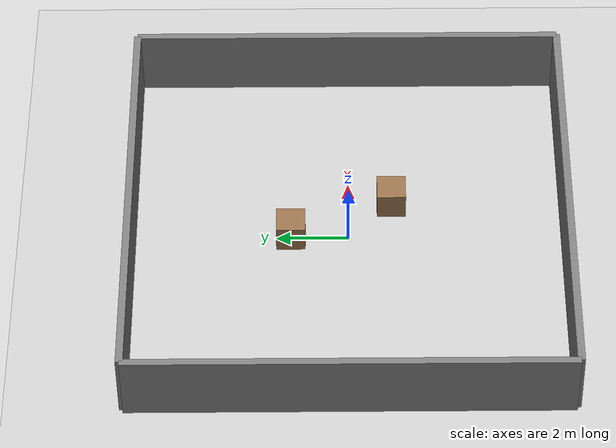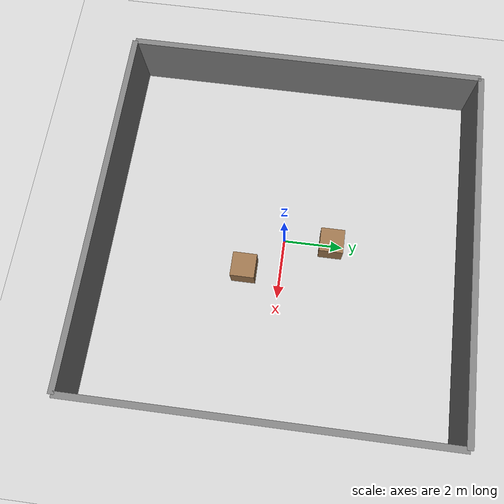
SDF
<sdf version="1.7">
 <world name="follow_test">
  <plugin filename="ignition-gazebo-physics-system" name="ignition::gazebo::systems::Physics"/>
  <plugin filename="ignition-gazebo-user-commands-system" name="ignition::gazebo::systems::UserCommands"/>
  <plugin filename="ignition-gazebo-scene-broadcaster-system" name="ignition::gazebo::systems::SceneBroadcaster"/>
  <plugin filename="ignition-gazebo-sensors-system" name="ignition::gazebo::systems::Sensors">
   <render_engine>ogre2</render_engine>
  </plugin>
  <light type="directional" name="sun">
   <pose>0 0 10 0 0 0</pose>
   <diffuse>0.8 0.8 0.8 1</diffuse>
   <specular>0.2 0.2 0.2 1</specular>
   <direction>-0.5 0.1 -0.9</direction>
  </light>
  <model name="ground_plane">
   <static>true</static>
   <link name="link">
    <collision name="collision">
     <geometry><plane><normal>0 0 1</normal><size>100 100</size></plane></geometry>
    </collision>
    <visual name="visual">
     <geometry><plane><normal>0 0 1</normal><size>100 100</size></plane></geometry>
     <material><ambient>0.8 0.8 0.8 1</ambient><diffuse>0.8 0.8 0.8 1</diffuse></material>
    </visual>
   </link>
  </model>
  <model name="walls">
   <static>true</static>
   <link name="link">
    <collision name="north">
     <pose>0 6 1 0 0 0</pose>
     <geometry><box><size>12 0.2 2</size></box></geometry>
    </collision>
    <visual name="north_v">
     <pose>0 6 1 0 0 0</pose>
     <geometry><box><size>12 0.2 2</size></box></geometry>
     <material><ambient>0.5 0.5 0.5 1</ambient><diffuse>0.5 0.5 0.5 1</diffuse></material>
    </visual>
    <collision name="south">
     <pose>0 -6 1 0 0 0</pose>
     <geometry><box><size>12 0.2 2</size></box></geometry>
    </collision>
    <visual name="south_v">
     <pose>0 -6 1 0 0 0</pose>
     <geometry><box><size>12 0.2 2</size></box></geometry>
     <material><ambient>0.5 0.5 0.5 1</ambient><diffuse>0.5 0.5 0.5 1</diffuse></material>
    </visual>
    <collision name="east">
     <pose>6 0 1 0 0 0</pose>
     <geometry><box><size>0.2 12 2</size></box></geometry>
    </collision>
    <visual name="east_v">
     <pose>6 0 1 0 0 0</pose>
     <geometry><box><size>0.2 12 2</size></box></geometry>
     <material><ambient>0.5 0.5 0.5 1</ambient><diffuse>0.5 0.5 0.5 1</diffuse></material>
    </visual>
    <collision name="west">
     <pose>-6 0 1 0 0 0</pose>
     <geometry><box><size>0.2 12 2</size></box></geometry>
    </collision>
    <visual name="west_v">
     <pose>-6 0 1 0 0 0</pose>
     <geometry><box><size>0.2 12 2</size></box></geometry>
     <material><ambient>0.5 0.5 0.5 1</ambient><diffuse>0.5 0.5 0.5 1</diffuse></material>
    </visual>
   </link>
  </model>
  <model name="obstacle_1">
   <static>true</static>
   <pose>1.2 -1.2 0.4 0 0 0</pose>
   <link name="link">
    <collision name="col"><geometry><box><size>0.8 0.8 0.8</size></box></geometry></collision>
    <visual name="vis">
     <geometry><box><size>0.8 0.8 0.8</size></box></geometry>
     <material><ambient>0.6 0.45 0.3 1</ambient><diffuse>0.6 0.45 0.3 1</diffuse></material>
    </visual>
   </link>
  </model>
  <model name="obstacle_2">
   <static>true</static>
   <pose>0.0 1.6 0.4 0 0 0</pose>
   <link name="link">
    <collision name="col"><geometry><box><size>0.8 0.8 0.8</size></box></geometry></collision>
    <visual name="vis">
     <geometry><box><size>0.8 0.8 0.8</size></box></geometry>
     <material><ambient>0.6 0.45 0.3 1</ambient><diffuse>0.6 0.45 0.3 1</diffuse></material>
    </visual>
   </link>
  </model>
  <physics type="ode"><max_step_size>0.004</max_step_size><real_time_factor>1.0</real_time_factor></physics>
 </world>
</sdf>
